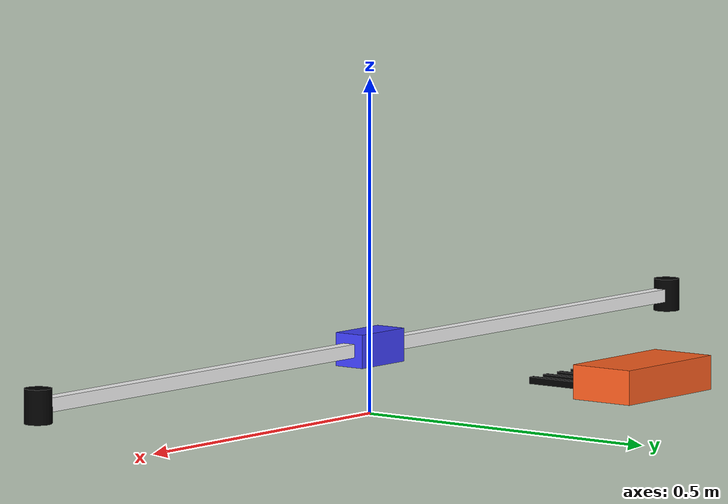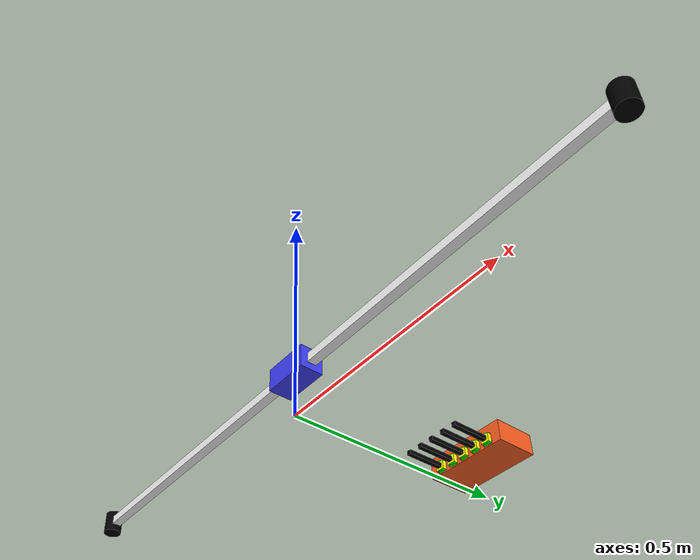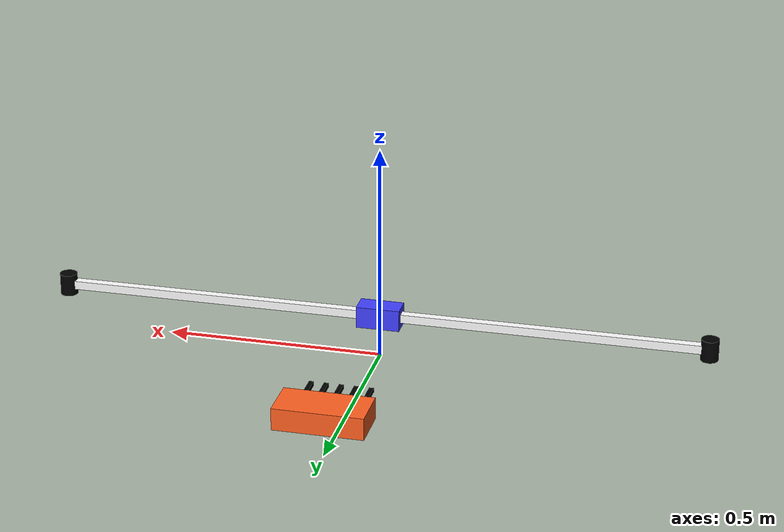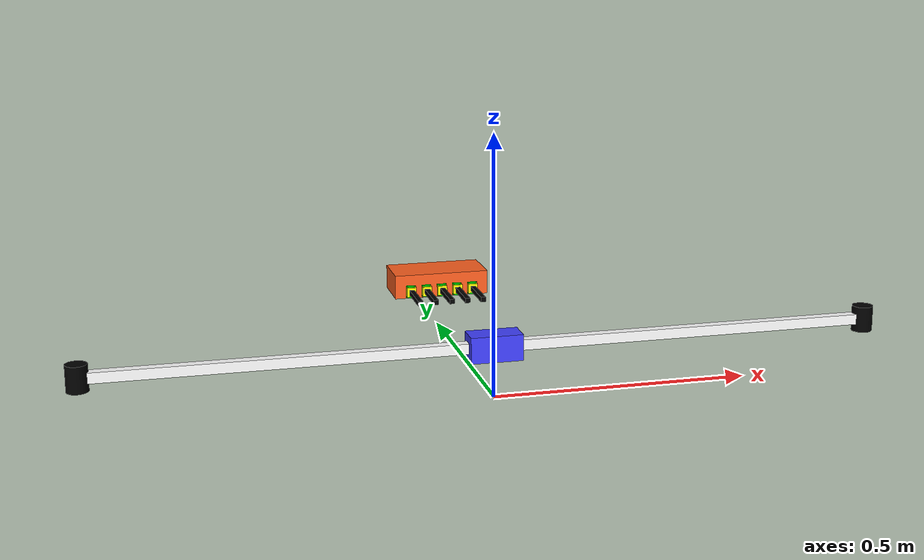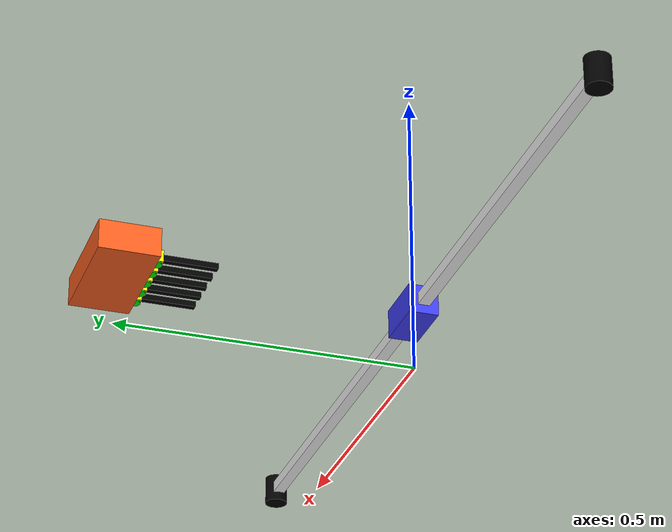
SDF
<sdf version='1.11'>
  <model name='bothoven'>
    <link name='base_link'>
      <inertial>
        <pose>0 0 0 0 0 0</pose>
        <mass>1</mass>
        <inertia>
          <ixx>0.10000000000000001</ixx>
          <ixy>0</ixy>
          <ixz>0</ixz>
          <iyy>0.10000000000000001</iyy>
          <iyz>0</iyz>
          <izz>0.10000000000000001</izz>
        </inertia>
      </inertial>
      <visual name='base_link_fixed_joint_lump__aluminum_rail_visual'>
        <pose>0 0 0.10000000000000001 0 0 0</pose>
        <geometry>
          <box>
            <size>1.5 0.02 0.02</size>
          </box>
        </geometry>
        <material>
          <diffuse>1 1 1 1</diffuse>
          <ambient>1 1 1 1</ambient>
        </material>
      </visual>
    </link>
    <joint name='left_carriage_joint' type='prismatic'>
      <pose relative_to='base_link'>0 0 0.10000000000000001 0 0 0</pose>
      <parent>base_link</parent>
      <child>left_carriage</child>
      <axis>
        <xyz>-1 0 0</xyz>
        <mimic joint='left_hand_stepper_joint'>
          <multiplier>0.02</multiplier>
          <offset>-0.60950000000000004</offset>
          <reference>0</reference>
        </mimic>
        <limit>
          <lower>-0.60950000000000004</lower>
          <upper>0.60950000000000004</upper>
          <effort>10</effort>
          <velocity>0.5</velocity>
        </limit>
        <dynamics>
          <spring_reference>0</spring_reference>
          <spring_stiffness>0</spring_stiffness>
        </dynamics>
      </axis>
    </joint>
    <link name='left_carriage'>
      <pose relative_to='left_carriage_joint'>0 0 0 0 0 0</pose>
      <inertial>
        <pose>0 0.1428571428571429 0 0 0 0</pose>
        <mass>0.69999999999999996</mass>
        <inertia>
          <ixx>0.037214285714285707</ixx>
          <ixy>0</ixy>
          <ixz>0</ixz>
          <iyy>0.0015</iyy>
          <iyz>0</iyz>
          <izz>0.037214285714285707</izz>
        </inertia>
      </inertial>
      <collision name='left_carriage_collision'>
        <pose>0 0 0 0 0 0</pose>
        <geometry>
          <box>
            <size>0.10000000000000001 0.050000000000000003 0.050000000000000003</size>
          </box>
        </geometry>
      </collision>
      <collision name='left_carriage_fixed_joint_lump__left_hand_collision_1'>
        <pose>0 1 0 0 0 0</pose>
        <geometry>
          <box>
            <size>0.20000000000000001 0.10000000000000001 0.050000000000000003</size>
          </box>
        </geometry>
      </collision>
      <visual name='left_carriage_visual'>
        <pose>0 0 0 0 0 0</pose>
        <geometry>
          <box>
            <size>0.10000000000000001 0.050000000000000003 0.050000000000000003</size>
          </box>
        </geometry>
        <material>
          <diffuse>0.25 0.25 1 1</diffuse>
          <ambient>0.25 0.25 1 1</ambient>
        </material>
      </visual>
      <visual name='left_carriage_fixed_joint_lump__left_hand_visual_1'>
        <pose>0 0.5 0 0 0 0</pose>
        <geometry>
          <box>
            <size>0.20000000000000001 0.10000000000000001 0.050000000000000003</size>
          </box>
        </geometry>
        <material>
          <diffuse>1 0.37500003 0.125 1</diffuse>
          <ambient>1 0.37500003 0.125 1</ambient>
        </material>
      </visual>
    </link>
    <joint name='left_hand_index_finger_servo_joint' type='revolute'>
      <pose relative_to='left_carriage'>-0.03333333333333334 0.45000000000000001 -0.01 0 0 0</pose>
      <parent>left_carriage</parent>
      <child>left_hand_index_finger_servo</child>
      <axis>
        <xyz>0 0 1</xyz>
        <limit>
          <lower>-0.20000000000000001</lower>
          <upper>0.20000000000000001</upper>
          <effort>1</effort>
          <velocity>1</velocity>
        </limit>
        <dynamics>
          <spring_reference>0</spring_reference>
          <spring_stiffness>0</spring_stiffness>
        </dynamics>
      </axis>
    </joint>
    <link name='left_hand_index_finger_servo'>
      <pose relative_to='left_hand_index_finger_servo_joint'>0 0 0 0 0 0</pose>
      <inertial>
        <pose>0 0 0 0 0 0</pose>
        <mass>0.050000000000000003</mass>
        <inertia>
          <ixx>2.0000000000000002e-05</ixx>
          <ixy>0</ixy>
          <ixz>0</ixz>
          <iyy>2.0000000000000002e-05</iyy>
          <iyz>0</iyz>
          <izz>2.0000000000000002e-05</izz>
        </inertia>
      </inertial>
      <visual name='left_hand_index_finger_servo_visual'>
        <pose>0 0 0 0 0 0</pose>
        <geometry>
          <box>
            <size>0.02 0.02 0.02</size>
          </box>
        </geometry>
        <material>
          <diffuse>1 1 0 1</diffuse>
          <ambient>1 1 0 1</ambient>
        </material>
      </visual>
    </link>
    <joint name='left_hand_index_finger_solenoid_joint' type='revolute'>
      <pose relative_to='left_hand_index_finger_servo'>0 0 0 0 0 0</pose>
      <parent>left_hand_index_finger_servo</parent>
      <child>left_hand_index_finger_solenoid</child>
      <axis>
        <xyz>1 0 0</xyz>
        <limit>
          <lower>-0.20000000000000001</lower>
          <upper>0.20000000000000001</upper>
          <effort>1</effort>
          <velocity>1</velocity>
        </limit>
        <dynamics>
          <spring_reference>0</spring_reference>
          <spring_stiffness>0</spring_stiffness>
        </dynamics>
      </axis>
    </joint>
    <link name='left_hand_index_finger_solenoid'>
      <pose relative_to='left_hand_index_finger_solenoid_joint'>0 0 0 0 0 0</pose>
      <inertial>
        <pose>0 -0.03333333333333334 0 0 0 0</pose>
        <mass>0.14999999999999999</mass>
        <inertia>
          <ixx>0.0002333333333333333</ixx>
          <ixy>0</ixy>
          <ixz>0</ixz>
          <iyy>0.00014999999999999999</iyy>
          <iyz>0</iyz>
          <izz>0.0002333333333333333</izz>
        </inertia>
      </inertial>
      <collision name='left_hand_index_finger_solenoid_fixed_joint_lump__left_hand_index_finger_collision'>
        <pose>0 -0.10000000000000001 0 0 0 0</pose>
        <geometry>
          <box>
            <size>0.01 0.10000000000000001 0.01</size>
          </box>
        </geometry>
      </collision>
      <visual name='left_hand_index_finger_solenoid_visual'>
        <pose>0 0 0 0 0 0</pose>
        <geometry>
          <cylinder>
            <length>0.025000000000000001</length>
            <radius>0.01</radius>
          </cylinder>
        </geometry>
        <material>
          <diffuse>0 1 0 1</diffuse>
          <ambient>0 1 0 1</ambient>
        </material>
      </visual>
      <visual name='left_hand_index_finger_solenoid_fixed_joint_lump__left_hand_index_finger_visual_1'>
        <pose>0 -0.050000000000000003 0 0 0 0</pose>
        <geometry>
          <box>
            <size>0.01 0.10000000000000001 0.01</size>
          </box>
        </geometry>
        <material>
          <diffuse>0 0 0 1</diffuse>
          <ambient>0 0 0 1</ambient>
        </material>
      </visual>
    </link>
    <joint name='left_hand_middle_finger_servo_joint' type='revolute'>
      <pose relative_to='left_carriage'>0 0.45000000000000001 -0.01 0 0 0</pose>
      <parent>left_carriage</parent>
      <child>left_hand_middle_finger_servo</child>
      <axis>
        <xyz>0 0 1</xyz>
        <limit>
          <lower>-0.20000000000000001</lower>
          <upper>0.20000000000000001</upper>
          <effort>1</effort>
          <velocity>1</velocity>
        </limit>
        <dynamics>
          <spring_reference>0</spring_reference>
          <spring_stiffness>0</spring_stiffness>
        </dynamics>
      </axis>
    </joint>
    <link name='left_hand_middle_finger_servo'>
      <pose relative_to='left_hand_middle_finger_servo_joint'>0 0 0 0 0 0</pose>
      <inertial>
        <pose>0 0 0 0 0 0</pose>
        <mass>0.050000000000000003</mass>
        <inertia>
          <ixx>2.0000000000000002e-05</ixx>
          <ixy>0</ixy>
          <ixz>0</ixz>
          <iyy>2.0000000000000002e-05</iyy>
          <iyz>0</iyz>
          <izz>2.0000000000000002e-05</izz>
        </inertia>
      </inertial>
      <visual name='left_hand_middle_finger_servo_visual'>
        <pose>0 0 0 0 0 0</pose>
        <geometry>
          <box>
            <size>0.02 0.02 0.02</size>
          </box>
        </geometry>
        <material>
          <diffuse>1 1 0 1</diffuse>
          <ambient>1 1 0 1</ambient>
        </material>
      </visual>
    </link>
    <joint name='left_hand_middle_finger_solenoid_joint' type='revolute'>
      <pose relative_to='left_hand_middle_finger_servo'>0 0 0 0 0 0</pose>
      <parent>left_hand_middle_finger_servo</parent>
      <child>left_hand_middle_finger_solenoid</child>
      <axis>
        <xyz>1 0 0</xyz>
        <limit>
          <lower>-0.20000000000000001</lower>
          <upper>0.20000000000000001</upper>
          <effort>1</effort>
          <velocity>1</velocity>
        </limit>
        <dynamics>
          <spring_reference>0</spring_reference>
          <spring_stiffness>0</spring_stiffness>
        </dynamics>
      </axis>
    </joint>
    <link name='left_hand_middle_finger_solenoid'>
      <pose relative_to='left_hand_middle_finger_solenoid_joint'>0 0 0 0 0 0</pose>
      <inertial>
        <pose>0 -0.03333333333333334 0 0 0 0</pose>
        <mass>0.14999999999999999</mass>
        <inertia>
          <ixx>0.0002333333333333333</ixx>
          <ixy>0</ixy>
          <ixz>0</ixz>
          <iyy>0.00014999999999999999</iyy>
          <iyz>0</iyz>
          <izz>0.0002333333333333333</izz>
        </inertia>
      </inertial>
      <collision name='left_hand_middle_finger_solenoid_fixed_joint_lump__left_hand_middle_finger_collision'>
        <pose>0 -0.10000000000000001 0 0 0 0</pose>
        <geometry>
          <box>
            <size>0.01 0.10000000000000001 0.01</size>
          </box>
        </geometry>
      </collision>
      <visual name='left_hand_middle_finger_solenoid_visual'>
        <pose>0 0 0 0 0 0</pose>
        <geometry>
          <cylinder>
            <length>0.025000000000000001</length>
            <radius>0.01</radius>
          </cylinder>
        </geometry>
        <material>
          <diffuse>0 1 0 1</diffuse>
          <ambient>0 1 0 1</ambient>
        </material>
      </visual>
      <visual name='left_hand_middle_finger_solenoid_fixed_joint_lump__left_hand_middle_finger_visual_1'>
        <pose>0 -0.050000000000000003 0 0 0 0</pose>
        <geometry>
          <box>
            <size>0.01 0.10000000000000001 0.01</size>
          </box>
        </geometry>
        <material>
          <diffuse>0 0 0 1</diffuse>
          <ambient>0 0 0 1</ambient>
        </material>
      </visual>
    </link>
    <joint name='left_hand_pinky_servo_joint' type='revolute'>
      <pose relative_to='left_carriage'>0.06666666666666668 0.45000000000000001 -0.01 0 0 0</pose>
      <parent>left_carriage</parent>
      <child>left_hand_pinky_servo</child>
      <axis>
        <xyz>0 0 1</xyz>
        <limit>
          <lower>-0.20000000000000001</lower>
          <upper>0.20000000000000001</upper>
          <effort>1</effort>
          <velocity>1</velocity>
        </limit>
        <dynamics>
          <spring_reference>0</spring_reference>
          <spring_stiffness>0</spring_stiffness>
        </dynamics>
      </axis>
    </joint>
    <link name='left_hand_pinky_servo'>
      <pose relative_to='left_hand_pinky_servo_joint'>0 0 0 0 0 0</pose>
      <inertial>
        <pose>0 0 0 0 0 0</pose>
        <mass>0.050000000000000003</mass>
        <inertia>
          <ixx>2.0000000000000002e-05</ixx>
          <ixy>0</ixy>
          <ixz>0</ixz>
          <iyy>2.0000000000000002e-05</iyy>
          <iyz>0</iyz>
          <izz>2.0000000000000002e-05</izz>
        </inertia>
      </inertial>
      <visual name='left_hand_pinky_servo_visual'>
        <pose>0 0 0 0 0 0</pose>
        <geometry>
          <box>
            <size>0.02 0.02 0.02</size>
          </box>
        </geometry>
        <material>
          <diffuse>1 1 0 1</diffuse>
          <ambient>1 1 0 1</ambient>
        </material>
      </visual>
    </link>
    <joint name='left_hand_pinky_solenoid_joint' type='revolute'>
      <pose relative_to='left_hand_pinky_servo'>0 0 0 0 0 0</pose>
      <parent>left_hand_pinky_servo</parent>
      <child>left_hand_pinky_solenoid</child>
      <axis>
        <xyz>1 0 0</xyz>
        <limit>
          <lower>-0.20000000000000001</lower>
          <upper>0.20000000000000001</upper>
          <effort>1</effort>
          <velocity>1</velocity>
        </limit>
        <dynamics>
          <spring_reference>0</spring_reference>
          <spring_stiffness>0</spring_stiffness>
        </dynamics>
      </axis>
    </joint>
    <link name='left_hand_pinky_solenoid'>
      <pose relative_to='left_hand_pinky_solenoid_joint'>0 0 0 0 0 0</pose>
      <inertial>
        <pose>0 -0.03333333333333334 0 0 0 0</pose>
        <mass>0.14999999999999999</mass>
        <inertia>
          <ixx>0.0002333333333333333</ixx>
          <ixy>0</ixy>
          <ixz>0</ixz>
          <iyy>0.00014999999999999999</iyy>
          <iyz>0</iyz>
          <izz>0.0002333333333333333</izz>
        </inertia>
      </inertial>
      <collision name='left_hand_pinky_solenoid_fixed_joint_lump__left_hand_pinky_collision'>
        <pose>0 -0.10000000000000001 0 0 0 0</pose>
        <geometry>
          <box>
            <size>0.01 0.10000000000000001 0.01</size>
          </box>
        </geometry>
      </collision>
      <visual name='left_hand_pinky_solenoid_visual'>
        <pose>0 0 0 0 0 0</pose>
        <geometry>
          <cylinder>
            <length>0.025000000000000001</length>
            <radius>0.01</radius>
          </cylinder>
        </geometry>
        <material>
          <diffuse>0 1 0 1</diffuse>
          <ambient>0 1 0 1</ambient>
        </material>
      </visual>
      <visual name='left_hand_pinky_solenoid_fixed_joint_lump__left_hand_pinky_visual_1'>
        <pose>0 -0.050000000000000003 0 0 0 0</pose>
        <geometry>
          <box>
            <size>0.01 0.10000000000000001 0.01</size>
          </box>
        </geometry>
        <material>
          <diffuse>0 0 0 1</diffuse>
          <ambient>0 0 0 1</ambient>
        </material>
      </visual>
    </link>
    <joint name='left_hand_ring_finger_servo_joint' type='revolute'>
      <pose relative_to='left_carriage'>0.03333333333333334 0.45000000000000001 -0.01 0 0 0</pose>
      <parent>left_carriage</parent>
      <child>left_hand_ring_finger_servo</child>
      <axis>
        <xyz>0 0 1</xyz>
        <limit>
          <lower>-0.20000000000000001</lower>
          <upper>0.20000000000000001</upper>
          <effort>1</effort>
          <velocity>1</velocity>
        </limit>
        <dynamics>
          <spring_reference>0</spring_reference>
          <spring_stiffness>0</spring_stiffness>
        </dynamics>
      </axis>
    </joint>
    <link name='left_hand_ring_finger_servo'>
      <pose relative_to='left_hand_ring_finger_servo_joint'>0 0 0 0 0 0</pose>
      <inertial>
        <pose>0 0 0 0 0 0</pose>
        <mass>0.050000000000000003</mass>
        <inertia>
          <ixx>2.0000000000000002e-05</ixx>
          <ixy>0</ixy>
          <ixz>0</ixz>
          <iyy>2.0000000000000002e-05</iyy>
          <iyz>0</iyz>
          <izz>2.0000000000000002e-05</izz>
        </inertia>
      </inertial>
      <visual name='left_hand_ring_finger_servo_visual'>
        <pose>0 0 0 0 0 0</pose>
        <geometry>
          <box>
            <size>0.02 0.02 0.02</size>
          </box>
        </geometry>
        <material>
          <diffuse>1 1 0 1</diffuse>
          <ambient>1 1 0 1</ambient>
        </material>
      </visual>
    </link>
    <joint name='left_hand_ring_finger_solenoid_joint' type='revolute'>
      <pose relative_to='left_hand_ring_finger_servo'>0 0 0 0 0 0</pose>
      <parent>left_hand_ring_finger_servo</parent>
      <child>left_hand_ring_finger_solenoid</child>
      <axis>
        <xyz>1 0 0</xyz>
        <limit>
          <lower>-0.20000000000000001</lower>
          <upper>0.20000000000000001</upper>
          <effort>1</effort>
          <velocity>1</velocity>
        </limit>
        <dynamics>
          <spring_reference>0</spring_reference>
          <spring_stiffness>0</spring_stiffness>
        </dynamics>
      </axis>
    </joint>
    <link name='left_hand_ring_finger_solenoid'>
      <pose relative_to='left_hand_ring_finger_solenoid_joint'>0 0 0 0 0 0</pose>
      <inertial>
        <pose>0 -0.03333333333333334 0 0 0 0</pose>
        <mass>0.14999999999999999</mass>
        <inertia>
          <ixx>0.0002333333333333333</ixx>
          <ixy>0</ixy>
          <ixz>0</ixz>
          <iyy>0.00014999999999999999</iyy>
          <iyz>0</iyz>
          <izz>0.0002333333333333333</izz>
        </inertia>
      </inertial>
      <collision name='left_hand_ring_finger_solenoid_fixed_joint_lump__left_hand_ring_finger_collision'>
        <pose>0 -0.10000000000000001 0 0 0 0</pose>
        <geometry>
          <box>
            <size>0.01 0.10000000000000001 0.01</size>
          </box>
        </geometry>
      </collision>
      <visual name='left_hand_ring_finger_solenoid_visual'>
        <pose>0 0 0 0 0 0</pose>
        <geometry>
          <cylinder>
            <length>0.025000000000000001</length>
            <radius>0.01</radius>
          </cylinder>
        </geometry>
        <material>
          <diffuse>0 1 0 1</diffuse>
          <ambient>0 1 0 1</ambient>
        </material>
      </visual>
      <visual name='left_hand_ring_finger_solenoid_fixed_joint_lump__left_hand_ring_finger_visual_1'>
        <pose>0 -0.050000000000000003 0 0 0 0</pose>
        <geometry>
          <box>
            <size>0.01 0.10000000000000001 0.01</size>
          </box>
        </geometry>
        <material>
          <diffuse>0 0 0 1</diffuse>
          <ambient>0 0 0 1</ambient>
        </material>
      </visual>
    </link>
    <joint name='left_hand_thumb_servo_joint' type='revolute'>
      <pose relative_to='left_carriage'>-0.06666666666666668 0.45000000000000001 -0.01 0 0 0</pose>
      <parent>left_carriage</parent>
      <child>left_hand_thumb_servo</child>
      <axis>
        <xyz>0 0 1</xyz>
        <limit>
          <lower>-0.20000000000000001</lower>
          <upper>0.20000000000000001</upper>
          <effort>1</effort>
          <velocity>1</velocity>
        </limit>
        <dynamics>
          <spring_reference>0</spring_reference>
          <spring_stiffness>0</spring_stiffness>
        </dynamics>
      </axis>
    </joint>
    <link name='left_hand_thumb_servo'>
      <pose relative_to='left_hand_thumb_servo_joint'>0 0 0 0 0 0</pose>
      <inertial>
        <pose>0 0 0 0 0 0</pose>
        <mass>0.050000000000000003</mass>
        <inertia>
          <ixx>2.0000000000000002e-05</ixx>
          <ixy>0</ixy>
          <ixz>0</ixz>
          <iyy>2.0000000000000002e-05</iyy>
          <iyz>0</iyz>
          <izz>2.0000000000000002e-05</izz>
        </inertia>
      </inertial>
      <visual name='left_hand_thumb_servo_visual'>
        <pose>0 0 0 0 0 0</pose>
        <geometry>
          <box>
            <size>0.02 0.02 0.02</size>
          </box>
        </geometry>
        <material>
          <diffuse>1 1 0 1</diffuse>
          <ambient>1 1 0 1</ambient>
        </material>
      </visual>
    </link>
    <joint name='left_hand_thumb_solenoid_joint' type='revolute'>
      <pose relative_to='left_hand_thumb_servo'>0 0 0 0 0 0</pose>
      <parent>left_hand_thumb_servo</parent>
      <child>left_hand_thumb_solenoid</child>
      <axis>
        <xyz>1 0 0</xyz>
        <limit>
          <lower>-0.20000000000000001</lower>
          <upper>0.20000000000000001</upper>
          <effort>1</effort>
          <velocity>1</velocity>
        </limit>
        <dynamics>
          <spring_reference>0</spring_reference>
          <spring_stiffness>0</spring_stiffness>
        </dynamics>
      </axis>
    </joint>
    <link name='left_hand_thumb_solenoid'>
      <pose relative_to='left_hand_thumb_solenoid_joint'>0 0 0 0 0 0</pose>
      <inertial>
        <pose>0 -0.03333333333333334 0 0 0 0</pose>
        <mass>0.14999999999999999</mass>
        <inertia>
          <ixx>0.0002333333333333333</ixx>
          <ixy>0</ixy>
          <ixz>0</ixz>
          <iyy>0.00014999999999999999</iyy>
          <iyz>0</iyz>
          <izz>0.0002333333333333333</izz>
        </inertia>
      </inertial>
      <collision name='left_hand_thumb_solenoid_fixed_joint_lump__left_hand_thumb_collision'>
        <pose>0 -0.10000000000000001 0 0 0 0</pose>
        <geometry>
          <box>
            <size>0.01 0.10000000000000001 0.01</size>
          </box>
        </geometry>
      </collision>
      <visual name='left_hand_thumb_solenoid_visual'>
        <pose>0 0 0 0 0 0</pose>
        <geometry>
          <cylinder>
            <length>0.025000000000000001</length>
            <radius>0.01</radius>
          </cylinder>
        </geometry>
        <material>
          <diffuse>0 1 0 1</diffuse>
          <ambient>0 1 0 1</ambient>
        </material>
      </visual>
      <visual name='left_hand_thumb_solenoid_fixed_joint_lump__left_hand_thumb_visual_1'>
        <pose>0 -0.050000000000000003 0 0 0 0</pose>
        <geometry>
          <box>
            <size>0.01 0.10000000000000001 0.01</size>
          </box>
        </geometry>
        <material>
          <diffuse>0 0 0 1</diffuse>
          <ambient>0 0 0 1</ambient>
        </material>
      </visual>
    </link>
    <joint name='left_hand_stepper_joint' type='revolute'>
      <pose relative_to='base_link'>0.75 0 0.10000000000000001 0 0 0</pose>
      <parent>base_link</parent>
      <child>left_hand_stepper</child>
      <axis>
        <xyz>0 0 1</xyz>
        <limit>
          <lower>0</lower>
          <upper>60.950000000000003</upper>
          <effort>5</effort>
          <velocity>1</velocity>
        </limit>
        <dynamics>
          <spring_reference>0</spring_reference>
          <spring_stiffness>0</spring_stiffness>
        </dynamics>
      </axis>
    </joint>
    <link name='left_hand_stepper'>
      <pose relative_to='left_hand_stepper_joint'>0 0 0 0 0 0</pose>
      <inertial>
        <pose>0 0 0 0 0 0</pose>
        <mass>0.10000000000000001</mass>
        <inertia>
          <ixx>0.0001</ixx>
          <ixy>0</ixy>
          <ixz>0</ixz>
          <iyy>0.0001</iyy>
          <iyz>0</iyz>
          <izz>0.0001</izz>
        </inertia>
      </inertial>
      <visual name='left_hand_stepper_visual'>
        <pose>0 0 0 0 0 0</pose>
        <geometry>
          <cylinder>
            <length>0.050000000000000003</length>
            <radius>0.02</radius>
          </cylinder>
        </geometry>
        <material>
          <diffuse>0 0 0 1</diffuse>
          <ambient>0 0 0 1</ambient>
        </material>
      </visual>
    </link>
    <joint name='right_carriage_joint' type='prismatic'>
      <pose relative_to='base_link'>0 0 0.10000000000000001 0 0 0</pose>
      <parent>base_link</parent>
      <child>right_carriage</child>
      <axis>
        <xyz>1 0 0</xyz>
        <mimic joint='right_hand_stepper_joint'>
          <multiplier>0.02</multiplier>
          <offset>-0.60950000000000004</offset>
          <reference>0</reference>
        </mimic>
        <limit>
          <lower>-0.60950000000000004</lower>
          <upper>0.60950000000000004</upper>
          <effort>10</effort>
          <velocity>0.5</velocity>
        </limit>
        <dynamics>
          <spring_reference>0</spring_reference>
          <spring_stiffness>0</spring_stiffness>
        </dynamics>
      </axis>
    </joint>
    <link name='right_carriage'>
      <pose relative_to='right_carriage_joint'>0 0 0 0 0 0</pose>
      <inertial>
        <pose>0 0.1428571428571429 0 0 0 0</pose>
        <mass>0.69999999999999996</mass>
        <inertia>
          <ixx>0.037214285714285707</ixx>
          <ixy>0</ixy>
          <ixz>0</ixz>
          <iyy>0.0015</iyy>
          <iyz>0</iyz>
          <izz>0.037214285714285707</izz>
        </inertia>
      </inertial>
      <collision name='right_carriage_collision'>
        <pose>0 0 0 0 0 0</pose>
        <geometry>
          <box>
            <size>0.10000000000000001 0.050000000000000003 0.050000000000000003</size>
          </box>
        </geometry>
      </collision>
      <collision name='right_carriage_fixed_joint_lump__right_hand_collision_1'>
        <pose>0 1 0 0 0 0</pose>
        <geometry>
          <box>
            <size>0.20000000000000001 0.10000000000000001 0.050000000000000003</size>
          </box>
        </geometry>
      </collision>
      <visual name='right_carriage_visual'>
        <pose>0 0 0 0 0 0</pose>
        <geometry>
          <box>
            <size>0.10000000000000001 0.050000000000000003 0.050000000000000003</size>
          </box>
        </geometry>
        <material>
          <diffuse>0.25 0.25 1 1</diffuse>
          <ambient>0.25 0.25 1 1</ambient>
        </material>
      </visual>
      <visual name='right_carriage_fixed_joint_lump__right_hand_visual_1'>
        <pose>0 0.5 0 0 0 0</pose>
        <geometry>
          <box>
            <size>0.20000000000000001 0.10000000000000001 0.050000000000000003</size>
          </box>
        </geometry>
        <material>
          <diffuse>1 0.37500003 0.125 1</diffuse>
          <ambient>1 0.37500003 0.125 1</ambient>
        </material>
      </visual>
    </link>
    <joint name='right_hand_index_finger_servo_joint' type='revolute'>
      <pose relative_to='right_carriage'>0.03333333333333334 0.45000000000000001 -0.01 0 0 0</pose>
      <parent>right_carriage</parent>
      <child>right_hand_index_finger_servo</child>
      <axis>
        <xyz>0 0 1</xyz>
        <limit>
          <lower>-0.20000000000000001</lower>
          <upper>0.20000000000000001</upper>
          <effort>1</effort>
          <velocity>1</velocity>
        </limit>
        <dynamics>
          <spring_reference>0</spring_reference>
          <spring_stiffness>0</spring_stiffness>
        </dynamics>
      </axis>
    </joint>
    <link name='right_hand_index_finger_servo'>
      <pose relative_to='right_hand_index_finger_servo_joint'>0 0 0 0 0 0</pose>
      <inertial>
        <pose>0 0 0 0 0 0</pose>
        <mass>0.050000000000000003</mass>
        <inertia>
          <ixx>2.0000000000000002e-05</ixx>
          <ixy>0</ixy>
          <ixz>0</ixz>
          <iyy>2.0000000000000002e-05</iyy>
          <iyz>0</iyz>
          <izz>2.0000000000000002e-05</izz>
        </inertia>
      </inertial>
      <visual name='right_hand_index_finger_servo_visual'>
        <pose>0 0 0 0 0 0</pose>
        <geometry>
          <box>
            <size>0.02 0.02 0.02</size>
          </box>
        </geometry>
        <material>
          <diffuse>1 1 0 1</diffuse>
          <ambient>1 1 0 1</ambient>
        </material>
      </visual>
    </link>
    <joint name='right_hand_index_finger_solenoid_joint' type='revolute'>
      <pose relative_to='right_hand_index_finger_servo'>0 0 0 0 0 0</pose>
      <parent>right_hand_index_finger_servo</parent>
      <child>right_hand_index_finger_solenoid</child>
      <axis>
        <xyz>1 0 0</xyz>
        <limit>
          <lower>-0.20000000000000001</lower>
          <upper>0.20000000000000001</upper>
          <effort>1</effort>
          <velocity>1</velocity>
        </limit>
        <dynamics>
          <spring_reference>0</spring_reference>
          <spring_stiffness>0</spring_stiffness>
        </dynamics>
      </axis>
    </joint>
    <link name='right_hand_index_finger_solenoid'>
      <pose relative_to='right_hand_index_finger_solenoid_joint'>0 0 0 0 0 0</pose>
      <inertial>
        <pose>0 -0.03333333333333334 0 0 0 0</pose>
        <mass>0.14999999999999999</mass>
        <inertia>
          <ixx>0.0002333333333333333</ixx>
          <ixy>0</ixy>
          <ixz>0</ixz>
          <iyy>0.00014999999999999999</iyy>
          <iyz>0</iyz>
          <izz>0.0002333333333333333</izz>
        </inertia>
      </inertial>
      <collision name='right_hand_index_finger_solenoid_fixed_joint_lump__right_hand_index_finger_collision'>
        <pose>0 -0.10000000000000001 0 0 0 0</pose>
        <geometry>
          <box>
            <size>0.01 0.10000000000000001 0.01</size>
          </box>
        </geometry>
      </collision>
      <visual name='right_hand_index_finger_solenoid_visual'>
        <pose>0 0 0 0 0 0</pose>
        <geometry>
          <cylinder>
            <length>0.025000000000000001</length>
            <radius>0.01</radius>
          </cylinder>
        </geometry>
        <material>
          <diffuse>0 1 0 1</diffuse>
          <ambient>0 1 0 1</ambient>
        </material>
      </visual>
      <visual name='right_hand_index_finger_solenoid_fixed_joint_lump__right_hand_index_finger_visual_1'>
        <pose>0 -0.050000000000000003 0 0 0 0</pose>
        <geometry>
          <box>
            <size>0.01 0.10000000000000001 0.01</size>
          </box>
        </geometry>
        <material>
          <diffuse>0 0 0 1</diffuse>
          <ambient>0 0 0 1</ambient>
        </material>
      </visual>
    </link>
    <joint name='right_hand_middle_finger_servo_joint' type='revolute'>
      <pose relative_to='right_carriage'>0 0.45000000000000001 -0.01 0 0 0</pose>
      <parent>right_carriage</parent>
      <child>right_hand_middle_finger_servo</child>
      <axis>
        <xyz>0 0 1</xyz>
        <limit>
          <lower>-0.20000000000000001</lower>
          <upper>0.20000000000000001</upper>
          <effort>1</effort>
          <velocity>1</velocity>
        </limit>
        <dynamics>
          <spring_reference>0</spring_reference>
          <spring_stiffness>0</spring_stiffness>
        </dynamics>
      </axis>
    </joint>
    <link name='right_hand_middle_finger_servo'>
      <pose relative_to='right_hand_middle_finger_servo_joint'>0 0 0 0 0 0</pose>
      <inertial>
        <pose>0 0 0 0 0 0</pose>
        <mass>0.050000000000000003</mass>
        <inertia>
          <ixx>2.0000000000000002e-05</ixx>
          <ixy>0</ixy>
          <ixz>0</ixz>
          <iyy>2.0000000000000002e-05</iyy>
          <iyz>0</iyz>
          <izz>2.0000000000000002e-05</izz>
        </inertia>
      </inertial>
      <visual name='right_hand_middle_finger_servo_visual'>
        <pose>0 0 0 0 0 0</pose>
        <geometry>
          <box>
            <size>0.02 0.02 0.02</size>
          </box>
        </geometry>
        <material>
          <diffuse>1 1 0 1</diffuse>
          <ambient>1 1 0 1</ambient>
        </material>
      </visual>
    </link>
    <joint name='right_hand_middle_finger_solenoid_joint' type='revolute'>
      <pose relative_to='right_hand_middle_finger_servo'>0 0 0 0 0 0</pose>
      <parent>right_hand_middle_finger_servo</parent>
      <child>right_hand_middle_finger_solenoid</child>
      <axis>
        <xyz>1 0 0</xyz>
        <limit>
          <lower>-0.20000000000000001</lower>
          <upper>0.20000000000000001</upper>
          <effort>1</effort>
          <velocity>1</velocity>
        </limit>
        <dynamics>
          <spring_reference>0</spring_reference>
          <spring_stiffness>0</spring_stiffness>
        </dynamics>
      </axis>
    </joint>
    <link name='right_hand_middle_finger_solenoid'>
      <pose relative_to='right_hand_middle_finger_solenoid_joint'>0 0 0 0 0 0</pose>
      <inertial>
        <pose>0 -0.03333333333333334 0 0 0 0</pose>
        <mass>0.14999999999999999</mass>
        <inertia>
          <ixx>0.0002333333333333333</ixx>
          <ixy>0</ixy>
          <ixz>0</ixz>
          <iyy>0.00014999999999999999</iyy>
          <iyz>0</iyz>
          <izz>0.0002333333333333333</izz>
        </inertia>
      </inertial>
      <collision name='right_hand_middle_finger_solenoid_fixed_joint_lump__right_hand_middle_finger_collision'>
        <pose>0 -0.10000000000000001 0 0 0 0</pose>
        <geometry>
          <box>
            <size>0.01 0.10000000000000001 0.01</size>
          </box>
        </geometry>
      </collision>
      <visual name='right_hand_middle_finger_solenoid_visual'>
        <pose>0 0 0 0 0 0</pose>
        <geometry>
          <cylinder>
            <length>0.025000000000000001</length>
            <radius>0.01</radius>
          </cylinder>
        </geometry>
        <material>
          <diffuse>0 1 0 1</diffuse>
          <ambient>0 1 0 1</ambient>
        </material>
      </visual>
      <visual name='right_hand_middle_finger_solenoid_fixed_joint_lump__right_hand_middle_finger_visual_1'>
        <pose>0 -0.050000000000000003 0 0 0 0</pose>
        <geometry>
          <box>
            <size>0.01 0.10000000000000001 0.01</size>
          </box>
        </geometry>
        <material>
          <diffuse>0 0 0 1</diffuse>
          <ambient>0 0 0 1</ambient>
        </material>
      </visual>
    </link>
    <joint name='right_hand_pinky_servo_joint' type='revolute'>
      <pose relative_to='right_carriage'>-0.06666666666666668 0.45000000000000001 -0.01 0 0 0</pose>
      <parent>right_carriage</parent>
      <child>right_hand_pinky_servo</child>
      <axis>
        <xyz>0 0 1</xyz>
        <limit>
          <lower>-0.20000000000000001</lower>
          <upper>0.20000000000000001</upper>
          <effort>1</effort>
          <velocity>1</velocity>
        </limit>
        <dynamics>
          <spring_reference>0</spring_reference>
          <spring_stiffness>0</spring_stiffness>
        </dynamics>
      </axis>
    </joint>
    <link name='right_hand_pinky_servo'>
      <pose relative_to='right_hand_pinky_servo_joint'>0 0 0 0 0 0</pose>
      <inertial>
        <pose>0 0 0 0 0 0</pose>
        <mass>0.050000000000000003</mass>
        <inertia>
          <ixx>2.0000000000000002e-05</ixx>
          <ixy>0</ixy>
          <ixz>0</ixz>
          <iyy>2.0000000000000002e-05</iyy>
          <iyz>0</iyz>
          <izz>2.0000000000000002e-05</izz>
        </inertia>
      </inertial>
      <visual name='right_hand_pinky_servo_visual'>
        <pose>0 0 0 0 0 0</pose>
        <geometry>
          <box>
            <size>0.02 0.02 0.02</size>
          </box>
        </geometry>
        <material>
          <diffuse>1 1 0 1</diffuse>
          <ambient>1 1 0 1</ambient>
        </material>
      </visual>
    </link>
    <joint name='right_hand_pinky_solenoid_joint' type='revolute'>
      <pose relative_to='right_hand_pinky_servo'>0 0 0 0 0 0</pose>
      <parent>right_hand_pinky_servo</parent>
      <child>right_hand_pinky_solenoid</child>
      <axis>
        <xyz>1 0 0</xyz>
        <limit>
          <lower>-0.20000000000000001</lower>
          <upper>0.20000000000000001</upper>
          <effort>1</effort>
          <velocity>1</velocity>
        </limit>
        <dynamics>
          <spring_reference>0</spring_reference>
          <spring_stiffness>0</spring_stiffness>
        </dynamics>
      </axis>
    </joint>
    <link name='right_hand_pinky_solenoid'>
      <pose relative_to='right_hand_pinky_solenoid_joint'>0 0 0 0 0 0</pose>
      <inertial>
        <pose>0 -0.03333333333333334 0 0 0 0</pose>
        <mass>0.14999999999999999</mass>
        <inertia>
          <ixx>0.0002333333333333333</ixx>
          <ixy>0</ixy>
          <ixz>0</ixz>
          <iyy>0.00014999999999999999</iyy>
          <iyz>0</iyz>
          <izz>0.0002333333333333333</izz>
        </inertia>
      </inertial>
      <collision name='right_hand_pinky_solenoid_fixed_joint_lump__right_hand_pinky_collision'>
        <pose>0 -0.10000000000000001 0 0 0 0</pose>
        <geometry>
          <box>
            <size>0.01 0.10000000000000001 0.01</size>
          </box>
        </geometry>
      </collision>
      <visual name='right_hand_pinky_solenoid_visual'>
        <pose>0 0 0 0 0 0</pose>
        <geometry>
          <cylinder>
            <length>0.025000000000000001</length>
            <radius>0.01</radius>
          </cylinder>
        </geometry>
        <material>
          <diffuse>0 1 0 1</diffuse>
          <ambient>0 1 0 1</ambient>
        </material>
      </visual>
      <visual name='right_hand_pinky_solenoid_fixed_joint_lump__right_hand_pinky_visual_1'>
        <pose>0 -0.050000000000000003 0 0 0 0</pose>
        <geometry>
          <box>
            <size>0.01 0.10000000000000001 0.01</size>
          </box>
        </geometry>
        <material>
          <diffuse>0 0 0 1</diffuse>
          <ambient>0 0 0 1</ambient>
        </material>
      </visual>
    </link>
    <joint name='right_hand_ring_finger_servo_joint' type='revolute'>
      <pose relative_to='right_carriage'>-0.03333333333333334 0.45000000000000001 -0.01 0 0 0</pose>
      <parent>right_carriage</parent>
      <child>right_hand_ring_finger_servo</child>
      <axis>
        <xyz>0 0 1</xyz>
        <limit>
          <lower>-0.20000000000000001</lower>
          <upper>0.20000000000000001</upper>
          <effort>1</effort>
          <velocity>1</velocity>
        </limit>
        <dynamics>
          <spring_reference>0</spring_reference>
          <spring_stiffness>0</spring_stiffness>
        </dynamics>
      </axis>
    </joint>
    <link name='right_hand_ring_finger_servo'>
      <pose relative_to='right_hand_ring_finger_servo_joint'>0 0 0 0 0 0</pose>
      <inertial>
        <pose>0 0 0 0 0 0</pose>
        <mass>0.050000000000000003</mass>
        <inertia>
          <ixx>2.0000000000000002e-05</ixx>
          <ixy>0</ixy>
          <ixz>0</ixz>
          <iyy>2.0000000000000002e-05</iyy>
          <iyz>0</iyz>
          <izz>2.0000000000000002e-05</izz>
        </inertia>
      </inertial>
      <visual name='right_hand_ring_finger_servo_visual'>
        <pose>0 0 0 0 0 0</pose>
        <geometry>
          <box>
            <size>0.02 0.02 0.02</size>
          </box>
        </geometry>
        <material>
          <diffuse>1 1 0 1</diffuse>
          <ambient>1 1 0 1</ambient>
        </material>
      </visual>
    </link>
    <joint name='right_hand_ring_finger_solenoid_joint' type='revolute'>
      <pose relative_to='right_hand_ring_finger_servo'>0 0 0 0 0 0</pose>
      <parent>right_hand_ring_finger_servo</parent>
      <child>right_hand_ring_finger_solenoid</child>
      <axis>
        <xyz>1 0 0</xyz>
        <limit>
          <lower>-0.20000000000000001</lower>
          <upper>0.20000000000000001</upper>
          <effort>1</effort>
          <velocity>1</velocity>
        </limit>
        <dynamics>
          <spring_reference>0</spring_reference>
          <spring_stiffness>0</spring_stiffness>
        </dynamics>
      </axis>
    </joint>
    <link name='right_hand_ring_finger_solenoid'>
      <pose relative_to='right_hand_ring_finger_solenoid_joint'>0 0 0 0 0 0</pose>
      <inertial>
        <pose>0 -0.03333333333333334 0 0 0 0</pose>
        <mass>0.14999999999999999</mass>
        <inertia>
          <ixx>0.0002333333333333333</ixx>
          <ixy>0</ixy>
          <ixz>0</ixz>
          <iyy>0.00014999999999999999</iyy>
          <iyz>0</iyz>
          <izz>0.0002333333333333333</izz>
        </inertia>
      </inertial>
      <collision name='right_hand_ring_finger_solenoid_fixed_joint_lump__right_hand_ring_finger_collision'>
        <pose>0 -0.10000000000000001 0 0 0 0</pose>
        <geometry>
          <box>
            <size>0.01 0.10000000000000001 0.01</size>
          </box>
        </geometry>
      </collision>
      <visual name='right_hand_ring_finger_solenoid_visual'>
        <pose>0 0 0 0 0 0</pose>
        <geometry>
          <cylinder>
            <length>0.025000000000000001</length>
            <radius>0.01</radius>
          </cylinder>
        </geometry>
        <material>
          <diffuse>0 1 0 1</diffuse>
          <ambient>0 1 0 1</ambient>
        </material>
      </visual>
      <visual name='right_hand_ring_finger_solenoid_fixed_joint_lump__right_hand_ring_finger_visual_1'>
        <pose>0 -0.050000000000000003 0 0 0 0</pose>
        <geometry>
          <box>
            <size>0.01 0.10000000000000001 0.01</size>
          </box>
        </geometry>
        <material>
          <diffuse>0 0 0 1</diffuse>
          <ambient>0 0 0 1</ambient>
        </material>
      </visual>
    </link>
    <joint name='right_hand_thumb_servo_joint' type='revolute'>
      <pose relative_to='right_carriage'>0.06666666666666668 0.45000000000000001 -0.01 0 0 0</pose>
      <parent>right_carriage</parent>
      <child>right_hand_thumb_servo</child>
      <axis>
        <xyz>0 0 1</xyz>
        <limit>
          <lower>-0.20000000000000001</lower>
          <upper>0.20000000000000001</upper>
          <effort>1</effort>
          <velocity>1</velocity>
        </limit>
        <dynamics>
          <spring_reference>0</spring_reference>
          <spring_stiffness>0</spring_stiffness>
        </dynamics>
      </axis>
    </joint>
    <link name='right_hand_thumb_servo'>
      <pose relative_to='right_hand_thumb_servo_joint'>0 0 0 0 0 0</pose>
      <inertial>
        <pose>0 0 0 0 0 0</pose>
        <mass>0.050000000000000003</mass>
        <inertia>
          <ixx>2.0000000000000002e-05</ixx>
          <ixy>0</ixy>
          <ixz>0</ixz>
          <iyy>2.0000000000000002e-05</iyy>
          <iyz>0</iyz>
          <izz>2.0000000000000002e-05</izz>
        </inertia>
      </inertial>
      <visual name='right_hand_thumb_servo_visual'>
        <pose>0 0 0 0 0 0</pose>
        <geometry>
          <box>
            <size>0.02 0.02 0.02</size>
          </box>
        </geometry>
        <material>
          <diffuse>1 1 0 1</diffuse>
          <ambient>1 1 0 1</ambient>
        </material>
      </visual>
    </link>
    <joint name='right_hand_thumb_solenoid_joint' type='revolute'>
      <pose relative_to='right_hand_thumb_servo'>0 0 0 0 0 0</pose>
      <parent>right_hand_thumb_servo</parent>
      <child>right_hand_thumb_solenoid</child>
      <axis>
        <xyz>1 0 0</xyz>
        <limit>
          <lower>-0.20000000000000001</lower>
          <upper>0.20000000000000001</upper>
          <effort>1</effort>
          <velocity>1</velocity>
        </limit>
        <dynamics>
          <spring_reference>0</spring_reference>
          <spring_stiffness>0</spring_stiffness>
        </dynamics>
      </axis>
    </joint>
    <link name='right_hand_thumb_solenoid'>
      <pose relative_to='right_hand_thumb_solenoid_joint'>0 0 0 0 0 0</pose>
      <inertial>
        <pose>0 -0.03333333333333334 0 0 0 0</pose>
        <mass>0.14999999999999999</mass>
        <inertia>
          <ixx>0.0002333333333333333</ixx>
          <ixy>0</ixy>
          <ixz>0</ixz>
          <iyy>0.00014999999999999999</iyy>
          <iyz>0</iyz>
          <izz>0.0002333333333333333</izz>
        </inertia>
      </inertial>
      <collision name='right_hand_thumb_solenoid_fixed_joint_lump__right_hand_thumb_collision'>
        <pose>0 -0.10000000000000001 0 0 0 0</pose>
        <geometry>
          <box>
            <size>0.01 0.10000000000000001 0.01</size>
          </box>
        </geometry>
      </collision>
      <visual name='right_hand_thumb_solenoid_visual'>
        <pose>0 0 0 0 0 0</pose>
        <geometry>
          <cylinder>
            <length>0.025000000000000001</length>
            <radius>0.01</radius>
          </cylinder>
        </geometry>
        <material>
          <diffuse>0 1 0 1</diffuse>
          <ambient>0 1 0 1</ambient>
        </material>
      </visual>
      <visual name='right_hand_thumb_solenoid_fixed_joint_lump__right_hand_thumb_visual_1'>
        <pose>0 -0.050000000000000003 0 0 0 0</pose>
        <geometry>
          <box>
            <size>0.01 0.10000000000000001 0.01</size>
          </box>
        </geometry>
        <material>
          <diffuse>0 0 0 1</diffuse>
          <ambient>0 0 0 1</ambient>
        </material>
      </visual>
    </link>
    <joint name='right_hand_stepper_joint' type='revolute'>
      <pose relative_to='base_link'>-0.75 0 0.10000000000000001 0 0 0</pose>
      <parent>base_link</parent>
      <child>right_hand_stepper</child>
      <axis>
        <xyz>0 0 1</xyz>
        <limit>
          <lower>0</lower>
          <upper>60.950000000000003</upper>
          <effort>5</effort>
          <velocity>1</velocity>
        </limit>
        <dynamics>
          <spring_reference>0</spring_reference>
          <spring_stiffness>0</spring_stiffness>
        </dynamics>
      </axis>
    </joint>
    <link name='right_hand_stepper'>
      <pose relative_to='right_hand_stepper_joint'>0 0 0 0 0 0</pose>
      <inertial>
        <pose>0 0 0 0 0 0</pose>
        <mass>0.10000000000000001</mass>
        <inertia>
          <ixx>0.0001</ixx>
          <ixy>0</ixy>
          <ixz>0</ixz>
          <iyy>0.0001</iyy>
          <iyz>0</iyz>
          <izz>0.0001</izz>
        </inertia>
      </inertial>
      <visual name='right_hand_stepper_visual'>
        <pose>0 0 0 0 0 0</pose>
        <geometry>
          <cylinder>
            <length>0.050000000000000003</length>
            <radius>0.02</radius>
          </cylinder>
        </geometry>
        <material>
          <diffuse>0 0 0 1</diffuse>
          <ambient>0 0 0 1</ambient>
        </material>
      </visual>
    </link>
    <frame name='rail_to_base' attached_to='base_link'>
      <pose>0 0 0.10000000000000001 0 0 0</pose>
    </frame>
    <frame name='aluminum_rail' attached_to='rail_to_base'>
      <pose>0 0 0 0 0 0</pose>
    </frame>
    <frame name='left_hand_joint' attached_to='left_carriage'>
      <pose>0 0.5 0 0 0 0</pose>
    </frame>
    <frame name='left_hand' attached_to='left_hand_joint'>
      <pose>0 0 0 0 0 0</pose>
    </frame>
    <frame name='left_hand_index_finger_joint' attached_to='left_hand_index_finger_solenoid'>
      <pose>0 -0.050000000000000003 0 0 0 0</pose>
    </frame>
    <frame name='left_hand_index_finger' attached_to='left_hand_index_finger_joint'>
      <pose>0 0 0 0 0 0</pose>
    </frame>
    <frame name='left_hand_middle_finger_joint' attached_to='left_hand_middle_finger_solenoid'>
      <pose>0 -0.050000000000000003 0 0 0 0</pose>
    </frame>
    <frame name='left_hand_middle_finger' attached_to='left_hand_middle_finger_joint'>
      <pose>0 0 0 0 0 0</pose>
    </frame>
    <frame name='left_hand_pinky_joint' attached_to='left_hand_pinky_solenoid'>
      <pose>0 -0.050000000000000003 0 0 0 0</pose>
    </frame>
    <frame name='left_hand_pinky' attached_to='left_hand_pinky_joint'>
      <pose>0 0 0 0 0 0</pose>
    </frame>
    <frame name='left_hand_ring_finger_joint' attached_to='left_hand_ring_finger_solenoid'>
      <pose>0 -0.050000000000000003 0 0 0 0</pose>
    </frame>
    <frame name='left_hand_ring_finger' attached_to='left_hand_ring_finger_joint'>
      <pose>0 0 0 0 0 0</pose>
    </frame>
    <frame name='left_hand_thumb_joint' attached_to='left_hand_thumb_solenoid'>
      <pose>0 -0.050000000000000003 0 0 0 0</pose>
    </frame>
    <frame name='left_hand_thumb' attached_to='left_hand_thumb_joint'>
      <pose>0 0 0 0 0 0</pose>
    </frame>
    <frame name='right_hand_joint' attached_to='right_carriage'>
      <pose>0 0.5 0 0 0 0</pose>
    </frame>
    <frame name='right_hand' attached_to='right_hand_joint'>
      <pose>0 0 0 0 0 0</pose>
    </frame>
    <frame name='right_hand_index_finger_joint' attached_to='right_hand_index_finger_solenoid'>
      <pose>0 -0.050000000000000003 0 0 0 0</pose>
    </frame>
    <frame name='right_hand_index_finger' attached_to='right_hand_index_finger_joint'>
      <pose>0 0 0 0 0 0</pose>
    </frame>
    <frame name='right_hand_middle_finger_joint' attached_to='right_hand_middle_finger_solenoid'>
      <pose>0 -0.050000000000000003 0 0 0 0</pose>
    </frame>
    <frame name='right_hand_middle_finger' attached_to='right_hand_middle_finger_joint'>
      <pose>0 0 0 0 0 0</pose>
    </frame>
    <frame name='right_hand_pinky_joint' attached_to='right_hand_pinky_solenoid'>
      <pose>0 -0.050000000000000003 0 0 0 0</pose>
    </frame>
    <frame name='right_hand_pinky' attached_to='right_hand_pinky_joint'>
      <pose>0 0 0 0 0 0</pose>
    </frame>
    <frame name='right_hand_ring_finger_joint' attached_to='right_hand_ring_finger_solenoid'>
      <pose>0 -0.050000000000000003 0 0 0 0</pose>
    </frame>
    <frame name='right_hand_ring_finger' attached_to='right_hand_ring_finger_joint'>
      <pose>0 0 0 0 0 0</pose>
    </frame>
    <frame name='right_hand_thumb_joint' attached_to='right_hand_thumb_solenoid'>
      <pose>0 -0.050000000000000003 0 0 0 0</pose>
    </frame>
    <frame name='right_hand_thumb' attached_to='right_hand_thumb_joint'>
      <pose>0 0 0 0 0 0</pose>
    </frame>
  </model>
</sdf>
